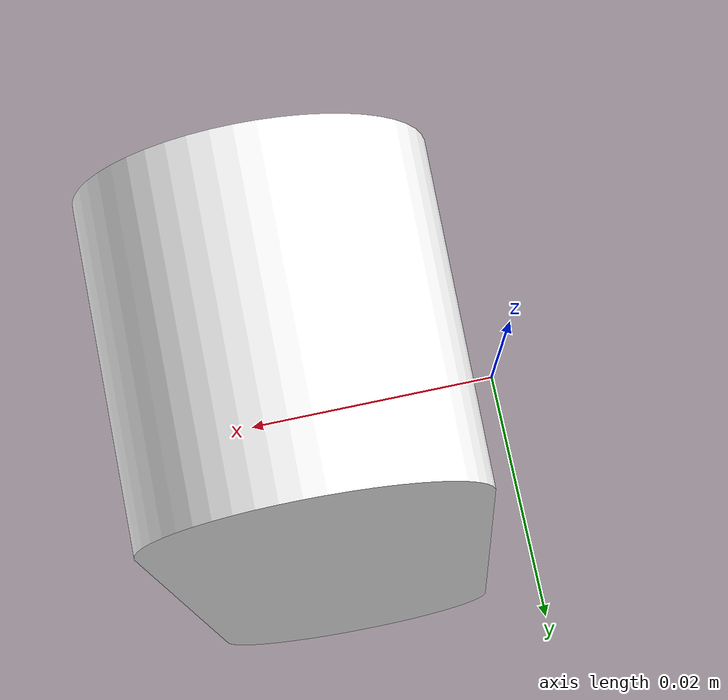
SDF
<?xml version='1.0'?>
<sdf version='1.6'>
  <model name='intel435'>
    <link name='link'>
      <inertial>
        <mass>0.1</mass>
      </inertial>
      <sensor name='camera' type='depth'>
        <update_rate>20</update_rate>
        <camera name='__default__'>
          <horizontal_fov>1.0472</horizontal_fov>
          <image>
            <width>640</width>
            <height>480</height>
            <format>R8G8B8</format>
          </image>
          <clip>
            <near>0.05</near>
            <far>3</far>
          </clip>
        </camera>
        <plugin name='camera_plugin' filename='libgazebo_ros_openni_kinect.so'>
          <baseline>0.2</baseline>
          <alwaysOn>1</alwaysOn>
          <updateRate>0.0</updateRate>
          <cameraName>camera_ir</cameraName>
          <imageTopicName>/camera/color/image_raw</imageTopicName>
          <cameraInfoTopicName>/camera/color/camera_info</cameraInfoTopicName>
          <depthImageTopicName>/camera/depth/image_raw</depthImageTopicName>
          <depthImageCameraInfoTopicName>/camera/depth/camera_info</depthImageCameraInfoTopicName>
          <pointCloudTopicName>/camera/depth/points</pointCloudTopicName>
          <frameName>camera_link</frameName>
          <pointCloudCutoff>0.5</pointCloudCutoff>
          <pointCloudCutoffMax>3.0</pointCloudCutoffMax>
          <distortionK1>0</distortionK1>
          <distortionK2>0</distortionK2>
          <distortionK3>0</distortionK3>
          <distortionT1>0</distortionT1>
          <distortionT2>0</distortionT2>
          <CxPrime>0</CxPrime>
          <Cx>0</Cx>
          <Cy>0</Cy>
          <focalLength>0</focalLength>
          <hackBaseline>0</hackBaseline>
        </plugin>
      </sensor>
      <self_collide>0</self_collide>
      <enable_wind>0</enable_wind>
      <kinematic>0</kinematic>
      <pose frame=''>0 0 0 -1.62642 0 -1.5918</pose>
      <visual name='visual'>
        <geometry>
          <mesh>
            <uri>model://kinect2/meshes/inteld435.dae</uri>
          </mesh>
        </geometry>
        <pose frame=''>0 0 0 0 -0 0</pose>
        <transparency>0</transparency>
        <cast_shadows>1</cast_shadows>
      </visual>
      <collision name='collision'>
        <laser_retro>0</laser_retro>
        <max_contacts>10</max_contacts>
        <pose frame=''>0 0 0 0 -0 0</pose>
        <geometry>
          <box>
            <size>0.073 0.276 0.072</size>
          </box>
        </geometry>
        <surface>
          <friction>
            <ode>
              <mu>1</mu>
              <mu2>1</mu2>
              <fdir1>0 0 0</fdir1>
              <slip1>0</slip1>
              <slip2>0</slip2>
            </ode>
            <torsional>
              <coefficient>1</coefficient>
              <patch_radius>0</patch_radius>
              <surface_radius>0</surface_radius>
              <use_patch_radius>1</use_patch_radius>
              <ode>
                <slip>0</slip>
              </ode>
            </torsional>
          </friction>
          <bounce>
            <restitution_coefficient>0</restitution_coefficient>
            <threshold>1e+06</threshold>
          </bounce>
          <contact>
            <collide_without_contact>0</collide_without_contact>
            <collide_without_contact_bitmask>1</collide_without_contact_bitmask>
            <collide_bitmask>1</collide_bitmask>
            <ode>
              <soft_cfm>0</soft_cfm>
              <soft_erp>0.2</soft_erp>
              <kp>1e+13</kp>
              <kd>1</kd>
              <max_vel>0.01</max_vel>
              <min_depth>0</min_depth>
            </ode>
            <bullet>
              <split_impulse>1</split_impulse>
              <split_impulse_penetration_threshold>-0.01</split_impulse_penetration_threshold>
              <soft_cfm>0</soft_cfm>
              <soft_erp>0.2</soft_erp>
              <kp>1e+13</kp>
              <kd>1</kd>
            </bullet>
          </contact>
        </surface>
      </collision>
    </link>
    <static>1</static>
    <allow_auto_disable>1</allow_auto_disable>
  </model>
</sdf>
